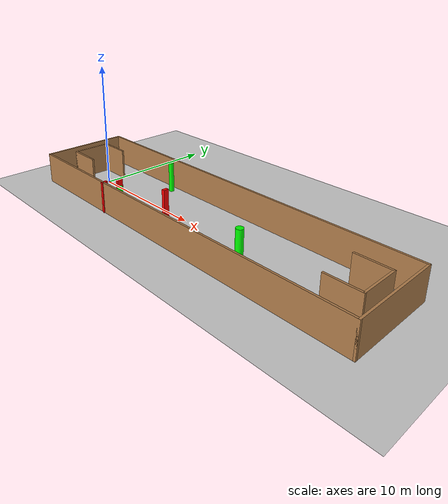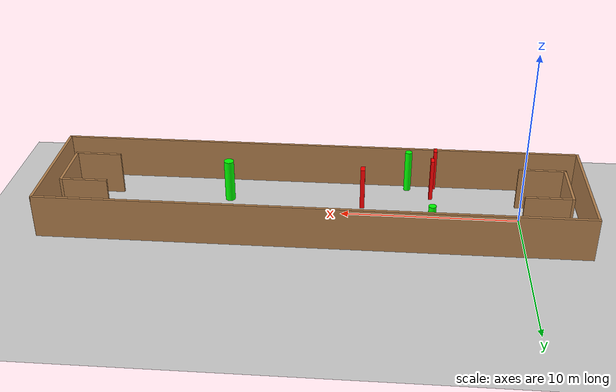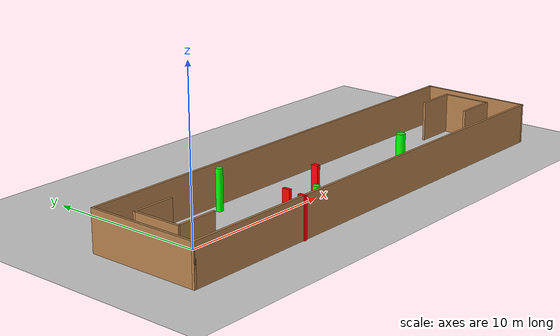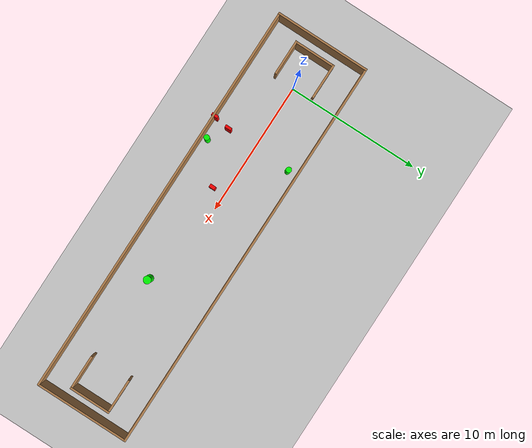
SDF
<sdf version="1.7">
 <world name="default">
  <light name="sun" type="directional">
   <pose>0 0 10 0 -0 0</pose>
   <diffuse>0.8 0.8 0.8 1</diffuse>
   <specular>0.2 0.2 0.2 1</specular>
   <attenuation>
    <range>1000</range>
    <constant>0.9</constant>
    <linear>0.01</linear>
    <quadratic>0.001</quadratic>
   </attenuation>
   <direction>-0.5 0.1 -0.9</direction>
   <spot><inner_angle>0</inner_angle><outer_angle>0</outer_angle><falloff>0</falloff></spot>
  </light>
  <model name="ground_plane">
   <static>1</static>
   <link name="link">
    <collision name="collision">
     <geometry><plane><normal>0 0 1</normal><size>100 100</size></plane></geometry>
     <surface>
      <contact><collide_bitmask>65535</collide_bitmask></contact>
      <friction><ode><mu>100</mu><mu2>50</mu2></ode></friction>
     </surface>
    </collision>
    <visual name="visual">
     <cast_shadows>0</cast_shadows>
     <geometry><plane><normal>0 0 1</normal><size>100 100</size></plane></geometry>
     <material>
      <script><uri>file://media/materials/scripts/gazebo.material</uri><name>Gazebo/Grey</name></script>
     </material>
    </visual>
   </link>
  </model>
  <gravity>0 0 -9.8</gravity>
  <magnetic_field>6e-06 2.3e-05 -4.2e-05</magnetic_field>
  <atmosphere type="adiabatic"/>
  <physics type="ode">
   <max_step_size>0.001</max_step_size>
   <real_time_factor>1</real_time_factor>
   <real_time_update_rate>1000</real_time_update_rate>
  </physics>
  <scene><ambient>0.4 0.4 0.4 1</ambient><background>0.7 0.7 0.7 1</background><shadows>1</shadows></scene>
  <spherical_coordinates>
   <surface_model>EARTH_WGS84</surface_model>
   <latitude_deg>0</latitude_deg>
   <longitude_deg>0</longitude_deg>
   <elevation>0</elevation>
   <heading_deg>0</heading_deg>
  </spherical_coordinates>
  <model name="my_base_walls">
   <link name="Wall_0">
    <collision name="Wall_0_Collision">
     <geometry><box><size>7.15 0.15 2.5</size></box></geometry>
     <pose>0 0 1.25 0 -0 0</pose>
    </collision>
    <visual name="Wall_0_Visual">
     <pose>0 0 1.25 0 -0 0</pose>
     <geometry><box><size>7.15 0.15 2.5</size></box></geometry>
     <material>
      <script><uri>file://media/materials/scripts/gazebo.material</uri><name>Gazebo/Wood</name></script>
      <ambient>1 1 1 1</ambient>
     </material>
     <meta><layer>0</layer></meta>
    </visual>
    <pose>-15 0 0 0 -0 1.5708</pose>
   </link>
   <link name="Wall_10">
    <collision name="Wall_10_Collision">
     <geometry><box><size>2.65 0.15 2.5</size></box></geometry>
     <pose>0 0 1.25 0 -0 0</pose>
    </collision>
    <visual name="Wall_10_Visual">
     <pose>0 0 1.25 0 -0 0</pose>
     <geometry><box><size>2.65 0.15 2.5</size></box></geometry>
     <material>
      <script><uri>file://media/materials/scripts/gazebo.material</uri><name>Gazebo/Wood</name></script>
      <ambient>1 1 1 1</ambient>
     </material>
     <meta><layer>0</layer></meta>
    </visual>
    <pose>-12.75 -1.5 0 0 -0 0</pose>
   </link>
   <link name="Wall_12">
    <collision name="Wall_12_Collision">
     <geometry><box><size>2.65 0.15 2.5</size></box></geometry>
     <pose>0 0 1.25 0 -0 0</pose>
    </collision>
    <visual name="Wall_12_Visual">
     <pose>0 0 1.25 0 -0 0</pose>
     <geometry><box><size>2.65 0.15 2.5</size></box></geometry>
     <material>
      <script><uri>file://media/materials/scripts/gazebo.material</uri><name>Gazebo/Wood</name></script>
      <ambient>1 1 1 1</ambient>
     </material>
     <meta><layer>0</layer></meta>
    </visual>
    <pose>-12.75 1.5 0 0 -0 0</pose>
   </link>
   <link name="Wall_14">
    <collision name="Wall_14_Collision">
     <geometry><box><size>3.15 0.15 2.5</size></box></geometry>
     <pose>0 0 1.25 0 -0 0</pose>
    </collision>
    <visual name="Wall_14_Visual">
     <pose>0 0 1.25 0 -0 0</pose>
     <geometry><box><size>3.15 0.15 2.5</size></box></geometry>
     <material>
      <script><uri>file://media/materials/scripts/gazebo.material</uri><name>Gazebo/Wood</name></script>
      <ambient>1 1 1 1</ambient>
     </material>
     <meta><layer>0</layer></meta>
    </visual>
    <pose>14 0 0 0 -0 -1.5708</pose>
   </link>
   <link name="Wall_15">
    <collision name="Wall_15_Collision">
     <geometry><box><size>2.65 0.15 2.5</size></box></geometry>
     <pose>0 0 1.25 0 -0 0</pose>
    </collision>
    <visual name="Wall_15_Visual">
     <pose>0 0 1.25 0 -0 0</pose>
     <geometry><box><size>2.65 0.15 2.5</size></box></geometry>
     <material>
      <script><uri>file://media/materials/scripts/gazebo.material</uri><name>Gazebo/Wood</name></script>
      <ambient>1 1 1 1</ambient>
     </material>
     <meta><layer>0</layer></meta>
    </visual>
    <pose>12.75 -1.5 0 0 -0 3.14159</pose>
   </link>
   <link name="Wall_17">
    <collision name="Wall_17_Collision">
     <geometry><box><size>2.65 0.15 2.5</size></box></geometry>
     <pose>0 0 1.25 0 -0 0</pose>
    </collision>
    <visual name="Wall_17_Visual">
     <pose>0 0 1.25 0 -0 0</pose>
     <geometry><box><size>2.65 0.15 2.5</size></box></geometry>
     <material>
      <script><uri>file://media/materials/scripts/gazebo.material</uri><name>Gazebo/Wood</name></script>
      <ambient>1 1 1 1</ambient>
     </material>
     <meta><layer>0</layer></meta>
    </visual>
    <pose>12.75 1.5 0 0 -0 3.14159</pose>
   </link>
   <link name="Wall_2">
    <collision name="Wall_2_Collision">
     <geometry><box><size>30.15 0.15 2.5</size></box></geometry>
     <pose>0 0 1.25 0 -0 0</pose>
    </collision>
    <visual name="Wall_2_Visual">
     <pose>0 0 1.25 0 -0 0</pose>
     <geometry><box><size>30.15 0.15 2.5</size></box></geometry>
     <material>
      <script><uri>file://media/materials/scripts/gazebo.material</uri><name>Gazebo/Wood</name></script>
      <ambient>1 1 1 1</ambient>
     </material>
     <meta><layer>0</layer></meta>
    </visual>
    <pose>-0 -3.5 0 0 -0 0</pose>
   </link>
   <link name="Wall_4">
    <collision name="Wall_4_Collision">
     <geometry><box><size>30.15 0.15 2.5</size></box></geometry>
     <pose>0 0 1.25 0 -0 0</pose>
    </collision>
    <visual name="Wall_4_Visual">
     <pose>0 0 1.25 0 -0 0</pose>
     <geometry><box><size>30.15 0.15 2.5</size></box></geometry>
     <material>
      <script><uri>file://media/materials/scripts/gazebo.material</uri><name>Gazebo/Wood</name></script>
      <ambient>1 1 1 1</ambient>
     </material>
     <meta><layer>0</layer></meta>
    </visual>
    <pose>-0 3.5 0 0 -0 0</pose>
   </link>
   <link name="Wall_6">
    <collision name="Wall_6_Collision">
     <geometry><box><size>7.15 0.15 2.5</size></box></geometry>
     <pose>0 0 1.25 0 -0 0</pose>
    </collision>
    <visual name="Wall_6_Visual">
     <pose>0 0 1.25 0 -0 0</pose>
     <geometry><box><size>7.15 0.15 2.5</size></box></geometry>
     <material>
      <script><uri>file://media/materials/scripts/gazebo.material</uri><name>Gazebo/Wood</name></script>
      <ambient>1 1 1 1</ambient>
     </material>
     <meta><layer>0</layer></meta>
    </visual>
    <pose>15 0 0 0 -0 -1.5708</pose>
   </link>
   <link name="Wall_9">
    <collision name="Wall_9_Collision">
     <geometry><box><size>3.15 0.15 2.5</size></box></geometry>
     <pose>0 0 1.25 0 -0 0</pose>
    </collision>
    <visual name="Wall_9_Visual">
     <pose>0 0 1.25 0 -0 0</pose>
     <geometry><box><size>3.15 0.15 2.5</size></box></geometry>
     <material>
      <script><uri>file://media/materials/scripts/gazebo.material</uri><name>Gazebo/Wood</name></script>
      <ambient>1 1 1 1</ambient>
     </material>
     <meta><layer>0</layer></meta>
    </visual>
    <pose>-14 0 0 0 -0 -1.5708</pose>
   </link>
   <static>1</static>
   <pose>11.5 0 0 0 -0 0</pose>
  </model>
  <model name="cylinder1">
   <static>1</static>
   <link name="link">
    <inertial>
     <mass>1</mass>
     <inertia><ixx>0.5</ixx><ixy>0</ixy><ixz>0</ixz><iyy>0.5</iyy><iyz>0</iyz><izz>1</izz></inertia>
    </inertial>
    <collision name="collision">
     <geometry><cylinder><radius>0.20167636856816853</radius><length>2.5</length></cylinder></geometry>
    </collision>
    <visual name="visual">
     <geometry><cylinder><radius>0.20167636856816853</radius><length>2.5</length></cylinder></geometry>
     <material>
      <ambient>0 1 0 1</ambient>
      <diffuse>0 1 0 1</diffuse>
      <specular>0.1 0.1 0.1 1</specular>
      <emissive>0 0 0 0</emissive>
     </material>
    </visual>
   </link>
   <pose>6.232348681902165 -3.0665663262485574 1.25 0 0 0</pose>
  </model>
  <model name="cylinder2">
   <static>1</static>
   <link name="link">
    <inertial>
     <mass>1</mass>
     <inertia><ixx>0.5</ixx><ixy>0</ixy><ixz>0</ixz><iyy>0.5</iyy><iyz>0</iyz><izz>1</izz></inertia>
    </inertial>
    <collision name="collision">
     <geometry><cylinder><radius>0.2041091188195903</radius><length>2.5</length></cylinder></geometry>
    </collision>
    <visual name="visual">
     <geometry><cylinder><radius>0.2041091188195903</radius><length>2.5</length></cylinder></geometry>
     <material>
      <ambient>0 1 0 1</ambient>
      <diffuse>0 1 0 1</diffuse>
      <specular>0.1 0.1 0.1 1</specular>
      <emissive>0 0 0 0</emissive>
     </material>
    </visual>
   </link>
   <pose>5.04650614856371 2.8051259152703247 1.25 0 0 0</pose>
  </model>
  <model name="cylinder3">
   <static>1</static>
   <link name="link">
    <inertial>
     <mass>1</mass>
     <inertia><ixx>0.5</ixx><ixy>0</ixy><ixz>0</ixz><iyy>0.5</iyy><iyz>0</iyz><izz>1</izz></inertia>
    </inertial>
    <collision name="collision">
     <geometry><cylinder><radius>0.2821175314372875</radius><length>2.5</length></cylinder></geometry>
    </collision>
    <visual name="visual">
     <geometry><cylinder><radius>0.2821175314372875</radius><length>2.5</length></cylinder></geometry>
     <material>
      <ambient>0 1 0 1</ambient>
      <diffuse>0 1 0 1</diffuse>
      <specular>0.1 0.1 0.1 1</specular>
      <emissive>0 0 0 0</emissive>
     </material>
    </visual>
   </link>
   <pose>16.53695702660528 -1.185254657407841 1.25 0 0 0</pose>
  </model>
  <model name="box1">
   <static>1</static>
   <link name="link">
    <inertial>
     <mass>1</mass>
     <inertia><ixx>0.083</ixx><ixy>0</ixy><ixz>0</ixz><iyy>0.083</iyy><iyz>0</iyz><izz>0.083</izz></inertia>
    </inertial>
    <collision name="collision">
     <geometry><box><size>0.20202287469441482 0.47066972214398023 2.5</size></box></geometry>
    </collision>
    <visual name="visual">
     <geometry><box><size>0.20202287469441482 0.47066972214398023 2.5</size></box></geometry>
     <material>
      <ambient>1 0 0 1</ambient>
      <diffuse>1 0 0 1</diffuse>
      <specular>0.1 0.1 0.1 1</specular>
      <emissive>0 0 0 0</emissive>
     </material>
    </visual>
    <sensor name="my_contact" type="contact">
     <contact><collision>box_collision</collision><topic>__default_topic__</topic></contact>
    </sensor>
   </link>
   <pose>4.876624342821225 -2.198087765952655 1.25 0 0 0</pose>
  </model>
  <model name="box2">
   <static>1</static>
   <link name="link">
    <inertial>
     <mass>1</mass>
     <inertia><ixx>0.083</ixx><ixy>0</ixy><ixz>0</ixz><iyy>0.083</iyy><iyz>0</iyz><izz>0.083</izz></inertia>
    </inertial>
    <collision name="collision">
     <geometry><box><size>0.20112895349800058 0.470286893343949 2.5</size></box></geometry>
    </collision>
    <visual name="visual">
     <geometry><box><size>0.20112895349800058 0.470286893343949 2.5</size></box></geometry>
     <material>
      <ambient>1 0 0 1</ambient>
      <diffuse>1 0 0 1</diffuse>
      <specular>0.1 0.1 0.1 1</specular>
      <emissive>0 0 0 0</emissive>
     </material>
    </visual>
    <sensor name="my_contact" type="contact">
     <contact><collision>box_collision</collision><topic>__default_topic__</topic></contact>
    </sensor>
   </link>
   <pose>4.675632577926782 -3.4125409997848744 1.25 0 0 0</pose>
  </model>
  <model name="box3">
   <static>1</static>
   <link name="link">
    <inertial>
     <mass>1</mass>
     <inertia><ixx>0.083</ixx><ixy>0</ixy><ixz>0</ixz><iyy>0.083</iyy><iyz>0</iyz><izz>0.083</izz></inertia>
    </inertial>
    <collision name="collision">
     <geometry><box><size>0.25170562338219915 0.4266920692306757 2.5</size></box></geometry>
    </collision>
    <visual name="visual">
     <geometry><box><size>0.25170562338219915 0.4266920692306757 2.5</size></box></geometry>
     <material>
      <ambient>1 0 0 1</ambient>
      <diffuse>1 0 0 1</diffuse>
      <specular>0.1 0.1 0.1 1</specular>
      <emissive>0 0 0 0</emissive>
     </material>
    </visual>
    <sensor name="my_contact" type="contact">
     <contact><collision>box_collision</collision><topic>__default_topic__</topic></contact>
    </sensor>
   </link>
   <pose>8.835005242085183 -0.9114635035283509 1.25 0 0 0</pose>
  </model>
 </world>
</sdf>
